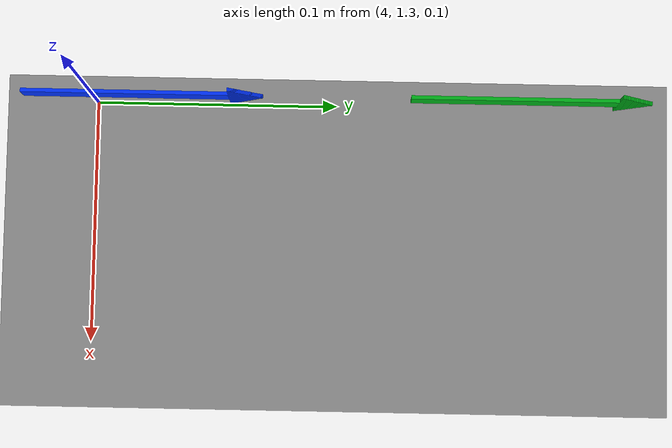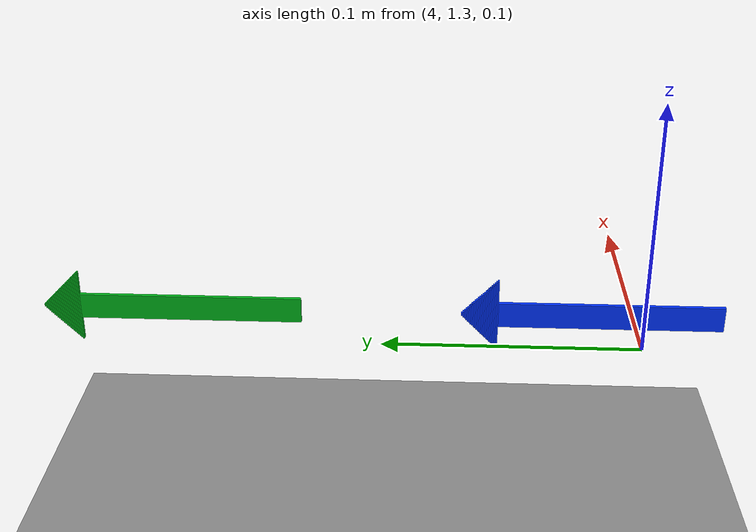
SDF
<sdf version="1.9">
 <world name="ros2_world">
  <model name="ground_plane">
   <static>true</static>
   <link name="link">
    <collision name="collision">
     <geometry><plane><normal>0 0 1</normal><size>30 30</size></plane></geometry>
    </collision>
    <visual name="visual">
     <geometry><plane><normal>0 0 1</normal><size>30 30</size></plane></geometry>
     <material><ambient>0.55 0.55 0.55 1</ambient><diffuse>0.55 0.55 0.55 1</diffuse></material>
    </visual>
   </link>
  </model>
  <model name="flechas">
   <static>true</static>
   <link name="flecha_20">
    <pose>3.99875 1.32 0.115 0 0 1.5708</pose>
    <visual name="p0">
     <pose>-0.007 0 0 0 0 0</pose>
     <geometry><box><size>0.085 0.0015 0.01</size></box></geometry>
     <material><ambient>0 0.2 1 1</ambient><diffuse>0 0.2 1 1</diffuse></material>
    </visual>
    <visual name="p1">
     <pose>0.03578 0 0 0 0 0</pose>
     <geometry><box><size>0.00056 0.0015 0.029</size></box></geometry>
     <material><ambient>0 0.2 1 1</ambient><diffuse>0 0.2 1 1</diffuse></material>
    </visual>
    <visual name="p2">
     <pose>0.03634 0 0 0 0 0</pose>
     <geometry><box><size>0.00056 0.0015 0.02784</size></box></geometry>
     <material><ambient>0 0.2 1 1</ambient><diffuse>0 0.2 1 1</diffuse></material>
    </visual>
    <visual name="p3">
     <pose>0.0369 0 0 0 0 0</pose>
     <geometry><box><size>0.00056 0.0015 0.02668</size></box></geometry>
     <material><ambient>0 0.2 1 1</ambient><diffuse>0 0.2 1 1</diffuse></material>
    </visual>
    <visual name="p4">
     <pose>0.03746 0 0 0 0 0</pose>
     <geometry><box><size>0.00056 0.0015 0.02552</size></box></geometry>
     <material><ambient>0 0.2 1 1</ambient><diffuse>0 0.2 1 1</diffuse></material>
    </visual>
    <visual name="p5">
     <pose>0.03802 0 0 0 0 0</pose>
     <geometry><box><size>0.00056 0.0015 0.02436</size></box></geometry>
     <material><ambient>0 0.2 1 1</ambient><diffuse>0 0.2 1 1</diffuse></material>
    </visual>
    <visual name="p6">
     <pose>0.03858 0 0 0 0 0</pose>
     <geometry><box><size>0.00056 0.0015 0.0232</size></box></geometry>
     <material><ambient>0 0.2 1 1</ambient><diffuse>0 0.2 1 1</diffuse></material>
    </visual>
    <visual name="p7">
     <pose>0.03914 0 0 0 0 0</pose>
     <geometry><box><size>0.00056 0.0015 0.02204</size></box></geometry>
     <material><ambient>0 0.2 1 1</ambient><diffuse>0 0.2 1 1</diffuse></material>
    </visual>
    <visual name="p8">
     <pose>0.0397 0 0 0 0 0</pose>
     <geometry><box><size>0.00056 0.0015 0.02088</size></box></geometry>
     <material><ambient>0 0.2 1 1</ambient><diffuse>0 0.2 1 1</diffuse></material>
    </visual>
    <visual name="p9">
     <pose>0.04026 0 0 0 0 0</pose>
     <geometry><box><size>0.00056 0.0015 0.01972</size></box></geometry>
     <material><ambient>0 0.2 1 1</ambient><diffuse>0 0.2 1 1</diffuse></material>
    </visual>
    <visual name="p10">
     <pose>0.04082 0 0 0 0 0</pose>
     <geometry><box><size>0.00056 0.0015 0.01856</size></box></geometry>
     <material><ambient>0 0.2 1 1</ambient><diffuse>0 0.2 1 1</diffuse></material>
    </visual>
    <visual name="p11">
     <pose>0.04138 0 0 0 0 0</pose>
     <geometry><box><size>0.00056 0.0015 0.0174</size></box></geometry>
     <material><ambient>0 0.2 1 1</ambient><diffuse>0 0.2 1 1</diffuse></material>
    </visual>
    <visual name="p12">
     <pose>0.04194 0 0 0 0 0</pose>
     <geometry><box><size>0.00056 0.0015 0.01624</size></box></geometry>
     <material><ambient>0 0.2 1 1</ambient><diffuse>0 0.2 1 1</diffuse></material>
    </visual>
    <visual name="p13">
     <pose>0.0425 0 0 0 0 0</pose>
     <geometry><box><size>0.00056 0.0015 0.01508</size></box></geometry>
     <material><ambient>0 0.2 1 1</ambient><diffuse>0 0.2 1 1</diffuse></material>
    </visual>
    <visual name="p14">
     <pose>0.04306 0 0 0 0 0</pose>
     <geometry><box><size>0.00056 0.0015 0.01392</size></box></geometry>
     <material><ambient>0 0.2 1 1</ambient><diffuse>0 0.2 1 1</diffuse></material>
    </visual>
    <visual name="p15">
     <pose>0.04362 0 0 0 0 0</pose>
     <geometry><box><size>0.00056 0.0015 0.01276</size></box></geometry>
     <material><ambient>0 0.2 1 1</ambient><diffuse>0 0.2 1 1</diffuse></material>
    </visual>
    <visual name="p16">
     <pose>0.04418 0 0 0 0 0</pose>
     <geometry><box><size>0.00056 0.0015 0.0116</size></box></geometry>
     <material><ambient>0 0.2 1 1</ambient><diffuse>0 0.2 1 1</diffuse></material>
    </visual>
    <visual name="p17">
     <pose>0.04474 0 0 0 0 0</pose>
     <geometry><box><size>0.00056 0.0015 0.01044</size></box></geometry>
     <material><ambient>0 0.2 1 1</ambient><diffuse>0 0.2 1 1</diffuse></material>
    </visual>
    <visual name="p18">
     <pose>0.0453 0 0 0 0 0</pose>
     <geometry><box><size>0.00056 0.0015 0.00928</size></box></geometry>
     <material><ambient>0 0.2 1 1</ambient><diffuse>0 0.2 1 1</diffuse></material>
    </visual>
    <visual name="p19">
     <pose>0.04586 0 0 0 0 0</pose>
     <geometry><box><size>0.00056 0.0015 0.00812</size></box></geometry>
     <material><ambient>0 0.2 1 1</ambient><diffuse>0 0.2 1 1</diffuse></material>
    </visual>
    <visual name="p20">
     <pose>0.04642 0 0 0 0 0</pose>
     <geometry><box><size>0.00056 0.0015 0.00696</size></box></geometry>
     <material><ambient>0 0.2 1 1</ambient><diffuse>0 0.2 1 1</diffuse></material>
    </visual>
    <visual name="p21">
     <pose>0.04698 0 0 0 0 0</pose>
     <geometry><box><size>0.00056 0.0015 0.0058</size></box></geometry>
     <material><ambient>0 0.2 1 1</ambient><diffuse>0 0.2 1 1</diffuse></material>
    </visual>
    <visual name="p22">
     <pose>0.04754 0 0 0 0 0</pose>
     <geometry><box><size>0.00056 0.0015 0.00464</size></box></geometry>
     <material><ambient>0 0.2 1 1</ambient><diffuse>0 0.2 1 1</diffuse></material>
    </visual>
    <visual name="p23">
     <pose>0.0481 0 0 0 0 0</pose>
     <geometry><box><size>0.00056 0.0015 0.00348</size></box></geometry>
     <material><ambient>0 0.2 1 1</ambient><diffuse>0 0.2 1 1</diffuse></material>
    </visual>
    <visual name="p24">
     <pose>0.04866 0 0 0 0 0</pose>
     <geometry><box><size>0.00056 0.0015 0.00232</size></box></geometry>
     <material><ambient>0 0.2 1 1</ambient><diffuse>0 0.2 1 1</diffuse></material>
    </visual>
    <visual name="p25">
     <pose>0.04922 0 0 0 0 0</pose>
     <geometry><box><size>0.00056 0.0015 0.00116</size></box></geometry>
     <material><ambient>0 0.2 1 1</ambient><diffuse>0 0.2 1 1</diffuse></material>
    </visual>
   </link>
   <link name="flecha_21">
    <pose>3.99875 1.48 0.115 0 0 1.5708</pose>
    <visual name="p0">
     <pose>-0.007 0 0 0 0 0</pose>
     <geometry><box><size>0.085 0.0015 0.01</size></box></geometry>
     <material><ambient>0 0.7 0.1 1</ambient><diffuse>0 0.7 0.1 1</diffuse></material>
    </visual>
    <visual name="p1">
     <pose>0.03578 0 0 0 0 0</pose>
     <geometry><box><size>0.00056 0.0015 0.029</size></box></geometry>
     <material><ambient>0 0.7 0.1 1</ambient><diffuse>0 0.7 0.1 1</diffuse></material>
    </visual>
    <visual name="p2">
     <pose>0.03634 0 0 0 0 0</pose>
     <geometry><box><size>0.00056 0.0015 0.02784</size></box></geometry>
     <material><ambient>0 0.7 0.1 1</ambient><diffuse>0 0.7 0.1 1</diffuse></material>
    </visual>
    <visual name="p3">
     <pose>0.0369 0 0 0 0 0</pose>
     <geometry><box><size>0.00056 0.0015 0.02668</size></box></geometry>
     <material><ambient>0 0.7 0.1 1</ambient><diffuse>0 0.7 0.1 1</diffuse></material>
    </visual>
    <visual name="p4">
     <pose>0.03746 0 0 0 0 0</pose>
     <geometry><box><size>0.00056 0.0015 0.02552</size></box></geometry>
     <material><ambient>0 0.7 0.1 1</ambient><diffuse>0 0.7 0.1 1</diffuse></material>
    </visual>
    <visual name="p5">
     <pose>0.03802 0 0 0 0 0</pose>
     <geometry><box><size>0.00056 0.0015 0.02436</size></box></geometry>
     <material><ambient>0 0.7 0.1 1</ambient><diffuse>0 0.7 0.1 1</diffuse></material>
    </visual>
    <visual name="p6">
     <pose>0.03858 0 0 0 0 0</pose>
     <geometry><box><size>0.00056 0.0015 0.0232</size></box></geometry>
     <material><ambient>0 0.7 0.1 1</ambient><diffuse>0 0.7 0.1 1</diffuse></material>
    </visual>
    <visual name="p7">
     <pose>0.03914 0 0 0 0 0</pose>
     <geometry><box><size>0.00056 0.0015 0.02204</size></box></geometry>
     <material><ambient>0 0.7 0.1 1</ambient><diffuse>0 0.7 0.1 1</diffuse></material>
    </visual>
    <visual name="p8">
     <pose>0.0397 0 0 0 0 0</pose>
     <geometry><box><size>0.00056 0.0015 0.02088</size></box></geometry>
     <material><ambient>0 0.7 0.1 1</ambient><diffuse>0 0.7 0.1 1</diffuse></material>
    </visual>
    <visual name="p9">
     <pose>0.04026 0 0 0 0 0</pose>
     <geometry><box><size>0.00056 0.0015 0.01972</size></box></geometry>
     <material><ambient>0 0.7 0.1 1</ambient><diffuse>0 0.7 0.1 1</diffuse></material>
    </visual>
    <visual name="p10">
     <pose>0.04082 0 0 0 0 0</pose>
     <geometry><box><size>0.00056 0.0015 0.01856</size></box></geometry>
     <material><ambient>0 0.7 0.1 1</ambient><diffuse>0 0.7 0.1 1</diffuse></material>
    </visual>
    <visual name="p11">
     <pose>0.04138 0 0 0 0 0</pose>
     <geometry><box><size>0.00056 0.0015 0.0174</size></box></geometry>
     <material><ambient>0 0.7 0.1 1</ambient><diffuse>0 0.7 0.1 1</diffuse></material>
    </visual>
    <visual name="p12">
     <pose>0.04194 0 0 0 0 0</pose>
     <geometry><box><size>0.00056 0.0015 0.01624</size></box></geometry>
     <material><ambient>0 0.7 0.1 1</ambient><diffuse>0 0.7 0.1 1</diffuse></material>
    </visual>
    <visual name="p13">
     <pose>0.0425 0 0 0 0 0</pose>
     <geometry><box><size>0.00056 0.0015 0.01508</size></box></geometry>
     <material><ambient>0 0.7 0.1 1</ambient><diffuse>0 0.7 0.1 1</diffuse></material>
    </visual>
    <visual name="p14">
     <pose>0.04306 0 0 0 0 0</pose>
     <geometry><box><size>0.00056 0.0015 0.01392</size></box></geometry>
     <material><ambient>0 0.7 0.1 1</ambient><diffuse>0 0.7 0.1 1</diffuse></material>
    </visual>
    <visual name="p15">
     <pose>0.04362 0 0 0 0 0</pose>
     <geometry><box><size>0.00056 0.0015 0.01276</size></box></geometry>
     <material><ambient>0 0.7 0.1 1</ambient><diffuse>0 0.7 0.1 1</diffuse></material>
    </visual>
    <visual name="p16">
     <pose>0.04418 0 0 0 0 0</pose>
     <geometry><box><size>0.00056 0.0015 0.0116</size></box></geometry>
     <material><ambient>0 0.7 0.1 1</ambient><diffuse>0 0.7 0.1 1</diffuse></material>
    </visual>
    <visual name="p17">
     <pose>0.04474 0 0 0 0 0</pose>
     <geometry><box><size>0.00056 0.0015 0.01044</size></box></geometry>
     <material><ambient>0 0.7 0.1 1</ambient><diffuse>0 0.7 0.1 1</diffuse></material>
    </visual>
    <visual name="p18">
     <pose>0.0453 0 0 0 0 0</pose>
     <geometry><box><size>0.00056 0.0015 0.00928</size></box></geometry>
     <material><ambient>0 0.7 0.1 1</ambient><diffuse>0 0.7 0.1 1</diffuse></material>
    </visual>
    <visual name="p19">
     <pose>0.04586 0 0 0 0 0</pose>
     <geometry><box><size>0.00056 0.0015 0.00812</size></box></geometry>
     <material><ambient>0 0.7 0.1 1</ambient><diffuse>0 0.7 0.1 1</diffuse></material>
    </visual>
    <visual name="p20">
     <pose>0.04642 0 0 0 0 0</pose>
     <geometry><box><size>0.00056 0.0015 0.00696</size></box></geometry>
     <material><ambient>0 0.7 0.1 1</ambient><diffuse>0 0.7 0.1 1</diffuse></material>
    </visual>
    <visual name="p21">
     <pose>0.04698 0 0 0 0 0</pose>
     <geometry><box><size>0.00056 0.0015 0.0058</size></box></geometry>
     <material><ambient>0 0.7 0.1 1</ambient><diffuse>0 0.7 0.1 1</diffuse></material>
    </visual>
    <visual name="p22">
     <pose>0.04754 0 0 0 0 0</pose>
     <geometry><box><size>0.00056 0.0015 0.00464</size></box></geometry>
     <material><ambient>0 0.7 0.1 1</ambient><diffuse>0 0.7 0.1 1</diffuse></material>
    </visual>
    <visual name="p23">
     <pose>0.0481 0 0 0 0 0</pose>
     <geometry><box><size>0.00056 0.0015 0.00348</size></box></geometry>
     <material><ambient>0 0.7 0.1 1</ambient><diffuse>0 0.7 0.1 1</diffuse></material>
    </visual>
    <visual name="p24">
     <pose>0.04866 0 0 0 0 0</pose>
     <geometry><box><size>0.00056 0.0015 0.00232</size></box></geometry>
     <material><ambient>0 0.7 0.1 1</ambient><diffuse>0 0.7 0.1 1</diffuse></material>
    </visual>
    <visual name="p25">
     <pose>0.04922 0 0 0 0 0</pose>
     <geometry><box><size>0.00056 0.0015 0.00116</size></box></geometry>
     <material><ambient>0 0.7 0.1 1</ambient><diffuse>0 0.7 0.1 1</diffuse></material>
    </visual>
   </link>
  </model>
 </world>
</sdf>
